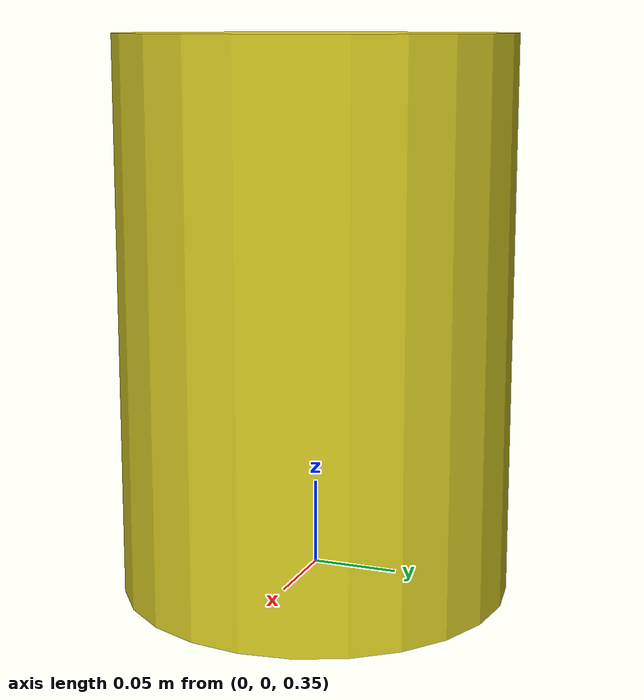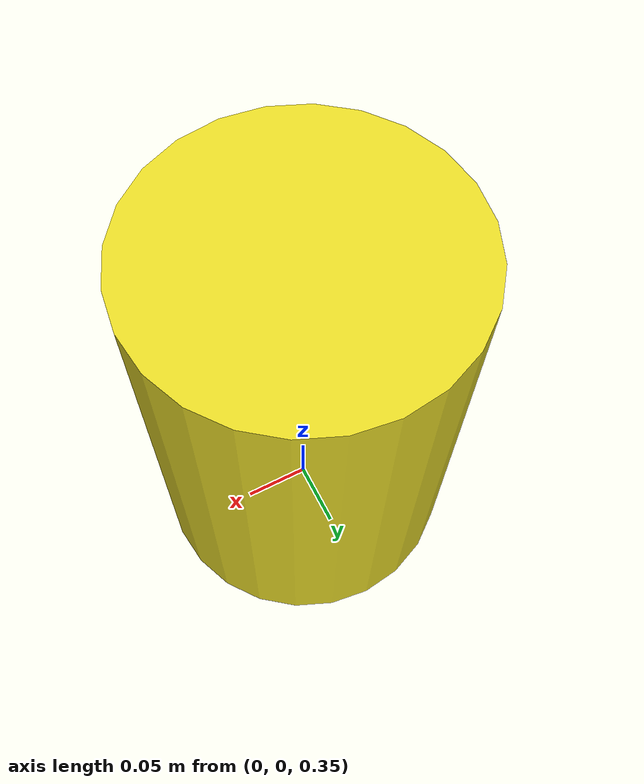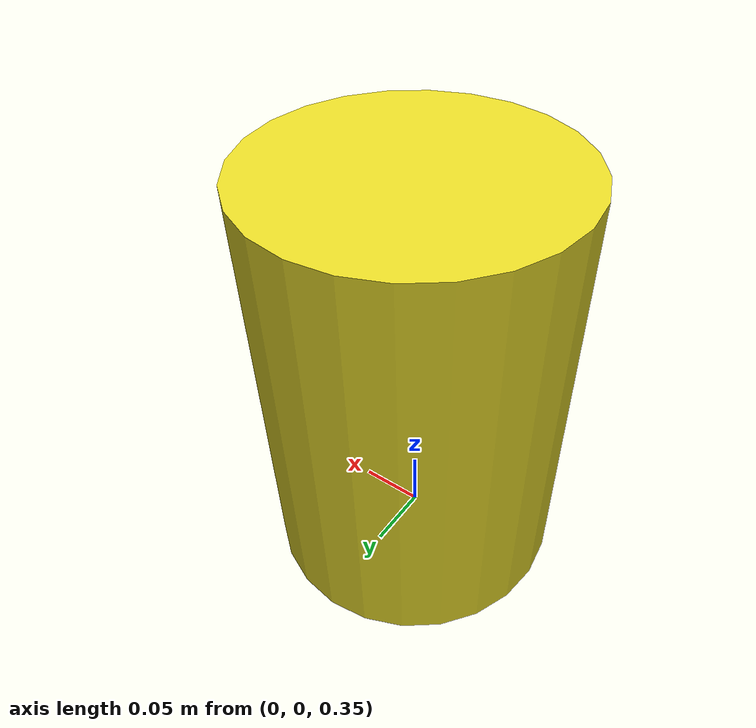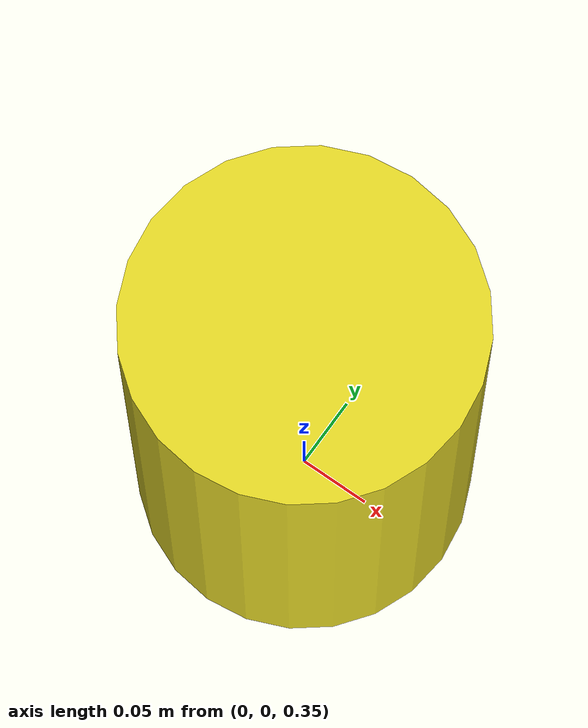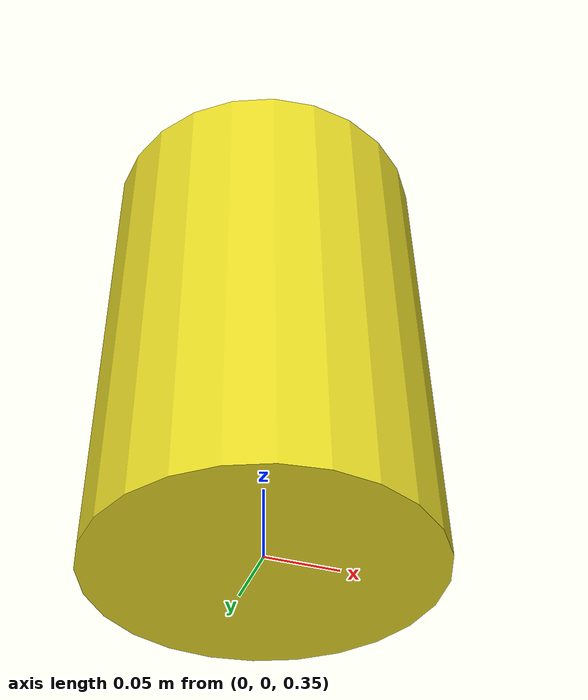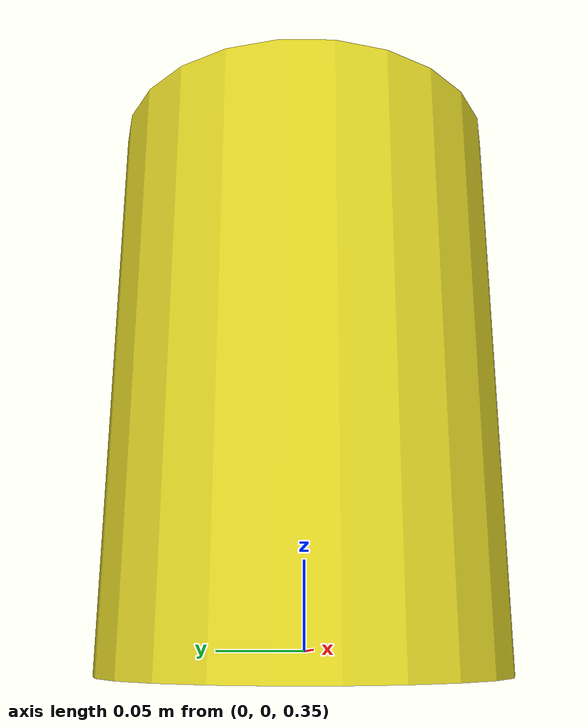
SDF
<?xml version="1.0" encoding="UTF-8"?>
<sdf version="1.5">
  <model name="cone">
    <pose>0 0 0.5 0 0 0</pose>
    <link name="cone_link">
      <inertial>
        <mass>0.01</mass>
      </inertial>
      <collision name="collision">
        <geometry>
          <cylinder>
            <radius>0.114</radius>
            <length>0.325</length>
          </cylinder>
        </geometry>
      </collision>
      <visual name="visual">
        <geometry>
          <cylinder>
            <radius>0.114</radius>
            <length>0.325</length>
          </cylinder>
        </geometry>
        <material>
          <script>
            <uri>file://media/materials/scripts/gazebo.material</uri>
            <name>Gazebo/Yellow</name>
          </script>
        </material>
      </visual>
    </link>
  </model>
</sdf>
